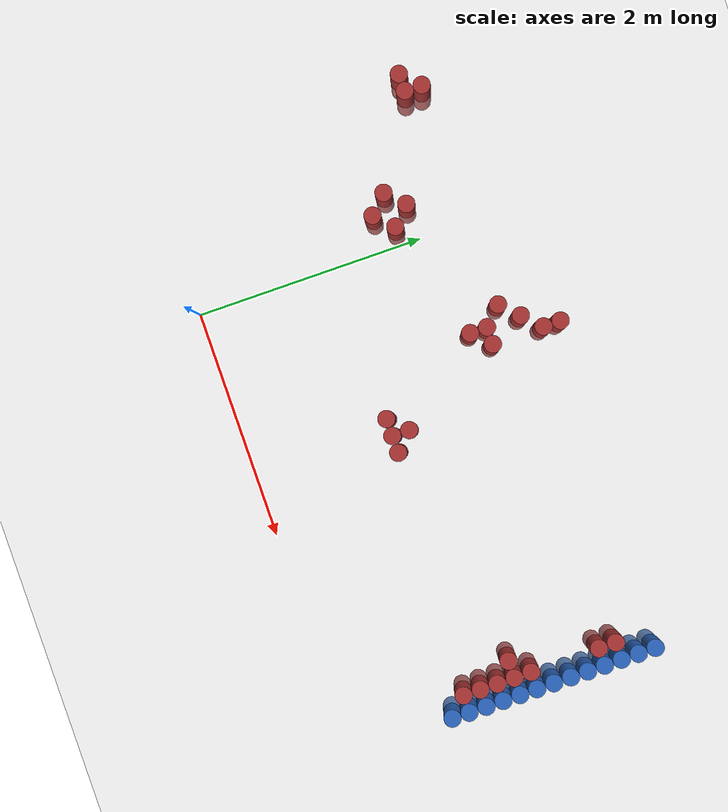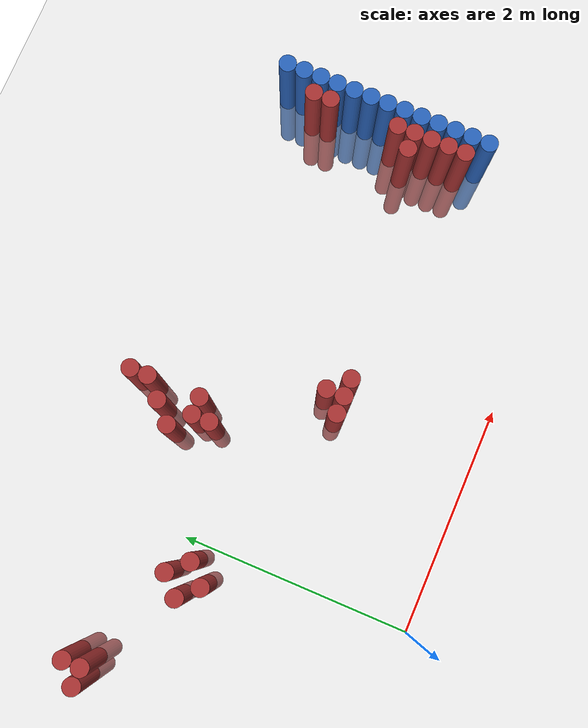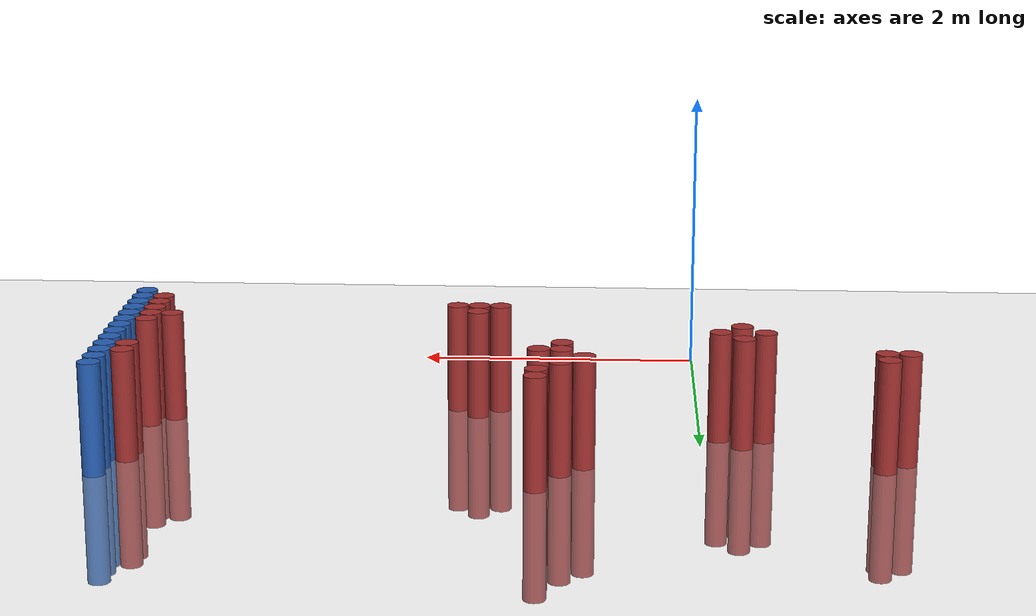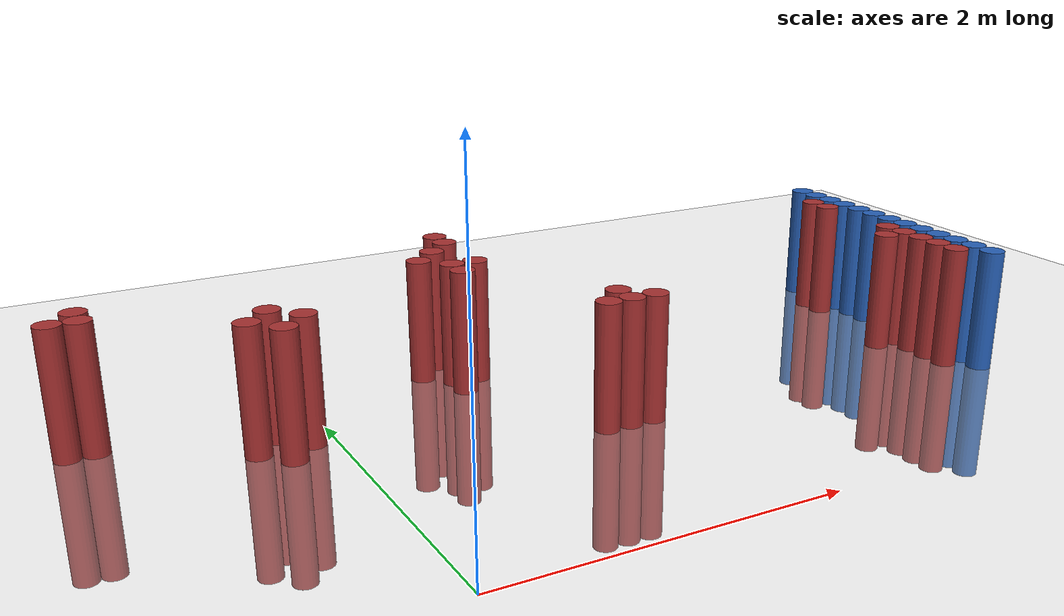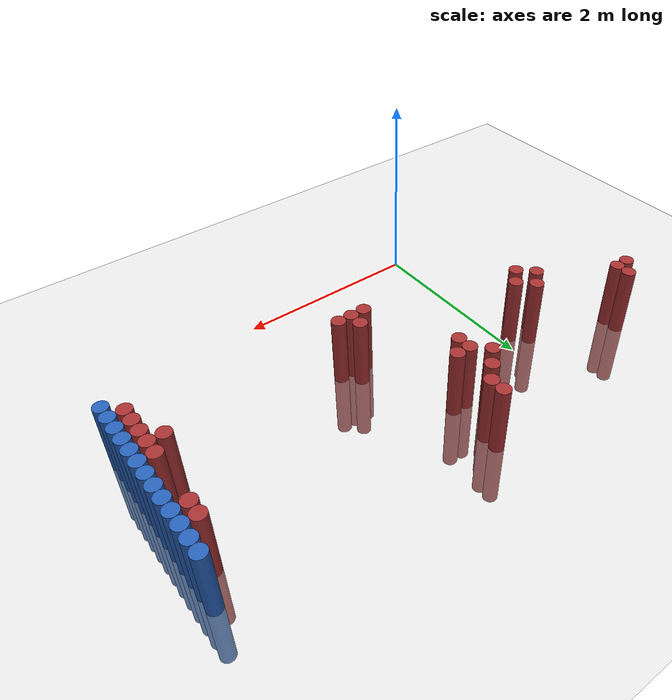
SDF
<sdf version="1.6">
 <world name="default">
  <model name="ground_plane">
   <static>1</static>
   <link name="link">
    <collision name="collision">
     <geometry><plane><normal>0 0 1</normal><size>100 100</size></plane></geometry>
     <surface><friction><ode><mu>100</mu><mu2>50</mu2></ode></friction></surface>
    </collision>
    <visual name="visual">
     <cast_shadows>0</cast_shadows>
     <geometry><plane><normal>0 0 1</normal><size>100 100</size></plane></geometry>
     <material>
      <script><uri>file://media/materials/scripts/gazebo.material</uri><name>Gazebo/Grey</name></script>
     </material>
    </visual>
   </link>
  </model>
  <model name="unit_cylinder_128">
   <static>1</static>
   <pose>3.925000 1.075000 0.000000 0.000000 0.000000 0.000000</pose>
   <link name="link">
    <inertial>
     <mass>1</mass>
     <inertia><ixx>0.145833</ixx><ixy>0</ixy><ixz>0</ixz><iyy>0.145833</iyy><iyz>0</iyz><izz>0.125</izz></inertia>
    </inertial>
    <collision name="collision">
     <geometry><cylinder><radius>0.075000</radius><length>1.5</length></cylinder></geometry>
    </collision>
    <visual name="visual">
     <geometry><cylinder><radius>0.075000</radius><length>1.5</length></cylinder></geometry>
     <material>
      <ambient>0.152000 0.379000 0.720000 1</ambient>
      <diffuse>0.152000 0.379000 0.720000 1</diffuse>
     </material>
     <material>
      <script><name>Gazebo/Grey</name><uri>file://media/materials/scripts/gazebo.material</uri></script>
     </material>
    </visual>
   </link>
  </model>
  <model name="unit_cylinder_130">
   <static>1</static>
   <pose>3.925000 1.225000 0.000000 0.000000 0.000000 0.000000</pose>
   <link name="link">
    <inertial>
     <mass>1</mass>
     <inertia><ixx>0.145833</ixx><ixy>0</ixy><ixz>0</ixz><iyy>0.145833</iyy><iyz>0</iyz><izz>0.125</izz></inertia>
    </inertial>
    <collision name="collision">
     <geometry><cylinder><radius>0.075000</radius><length>1.5</length></cylinder></geometry>
    </collision>
    <visual name="visual">
     <geometry><cylinder><radius>0.075000</radius><length>1.5</length></cylinder></geometry>
     <material>
      <ambient>0.152000 0.379000 0.720000 1</ambient>
      <diffuse>0.152000 0.379000 0.720000 1</diffuse>
     </material>
     <material>
      <script><name>Gazebo/Grey</name><uri>file://media/materials/scripts/gazebo.material</uri></script>
     </material>
    </visual>
   </link>
  </model>
  <model name="unit_cylinder_132">
   <static>1</static>
   <pose>3.925000 1.375000 0.000000 0.000000 0.000000 0.000000</pose>
   <link name="link">
    <inertial>
     <mass>1</mass>
     <inertia><ixx>0.145833</ixx><ixy>0</ixy><ixz>0</ixz><iyy>0.145833</iyy><iyz>0</iyz><izz>0.125</izz></inertia>
    </inertial>
    <collision name="collision">
     <geometry><cylinder><radius>0.075000</radius><length>1.5</length></cylinder></geometry>
    </collision>
    <visual name="visual">
     <geometry><cylinder><radius>0.075000</radius><length>1.5</length></cylinder></geometry>
     <material>
      <ambient>0.152000 0.379000 0.720000 1</ambient>
      <diffuse>0.152000 0.379000 0.720000 1</diffuse>
     </material>
     <material>
      <script><name>Gazebo/Grey</name><uri>file://media/materials/scripts/gazebo.material</uri></script>
     </material>
    </visual>
   </link>
  </model>
  <model name="unit_cylinder_134">
   <static>1</static>
   <pose>3.925000 1.525000 0.000000 0.000000 0.000000 0.000000</pose>
   <link name="link">
    <inertial>
     <mass>1</mass>
     <inertia><ixx>0.145833</ixx><ixy>0</ixy><ixz>0</ixz><iyy>0.145833</iyy><iyz>0</iyz><izz>0.125</izz></inertia>
    </inertial>
    <collision name="collision">
     <geometry><cylinder><radius>0.075000</radius><length>1.5</length></cylinder></geometry>
    </collision>
    <visual name="visual">
     <geometry><cylinder><radius>0.075000</radius><length>1.5</length></cylinder></geometry>
     <material>
      <ambient>0.152000 0.379000 0.720000 1</ambient>
      <diffuse>0.152000 0.379000 0.720000 1</diffuse>
     </material>
     <material>
      <script><name>Gazebo/Grey</name><uri>file://media/materials/scripts/gazebo.material</uri></script>
     </material>
    </visual>
   </link>
  </model>
  <model name="unit_cylinder_136">
   <static>1</static>
   <pose>3.925000 1.675000 0.000000 0.000000 0.000000 0.000000</pose>
   <link name="link">
    <inertial>
     <mass>1</mass>
     <inertia><ixx>0.145833</ixx><ixy>0</ixy><ixz>0</ixz><iyy>0.145833</iyy><iyz>0</iyz><izz>0.125</izz></inertia>
    </inertial>
    <collision name="collision">
     <geometry><cylinder><radius>0.075000</radius><length>1.5</length></cylinder></geometry>
    </collision>
    <visual name="visual">
     <geometry><cylinder><radius>0.075000</radius><length>1.5</length></cylinder></geometry>
     <material>
      <ambient>0.152000 0.379000 0.720000 1</ambient>
      <diffuse>0.152000 0.379000 0.720000 1</diffuse>
     </material>
     <material>
      <script><name>Gazebo/Grey</name><uri>file://media/materials/scripts/gazebo.material</uri></script>
     </material>
    </visual>
   </link>
  </model>
  <model name="unit_cylinder_138">
   <static>1</static>
   <pose>3.925000 1.825000 0.000000 0.000000 0.000000 0.000000</pose>
   <link name="link">
    <inertial>
     <mass>1</mass>
     <inertia><ixx>0.145833</ixx><ixy>0</ixy><ixz>0</ixz><iyy>0.145833</iyy><iyz>0</iyz><izz>0.125</izz></inertia>
    </inertial>
    <collision name="collision">
     <geometry><cylinder><radius>0.075000</radius><length>1.5</length></cylinder></geometry>
    </collision>
    <visual name="visual">
     <geometry><cylinder><radius>0.075000</radius><length>1.5</length></cylinder></geometry>
     <material>
      <ambient>0.152000 0.379000 0.720000 1</ambient>
      <diffuse>0.152000 0.379000 0.720000 1</diffuse>
     </material>
     <material>
      <script><name>Gazebo/Grey</name><uri>file://media/materials/scripts/gazebo.material</uri></script>
     </material>
    </visual>
   </link>
  </model>
  <model name="unit_cylinder_140">
   <static>1</static>
   <pose>3.925000 1.975000 0.000000 0.000000 0.000000 0.000000</pose>
   <link name="link">
    <inertial>
     <mass>1</mass>
     <inertia><ixx>0.145833</ixx><ixy>0</ixy><ixz>0</ixz><iyy>0.145833</iyy><iyz>0</iyz><izz>0.125</izz></inertia>
    </inertial>
    <collision name="collision">
     <geometry><cylinder><radius>0.075000</radius><length>1.5</length></cylinder></geometry>
    </collision>
    <visual name="visual">
     <geometry><cylinder><radius>0.075000</radius><length>1.5</length></cylinder></geometry>
     <material>
      <ambient>0.152000 0.379000 0.720000 1</ambient>
      <diffuse>0.152000 0.379000 0.720000 1</diffuse>
     </material>
     <material>
      <script><name>Gazebo/Grey</name><uri>file://media/materials/scripts/gazebo.material</uri></script>
     </material>
    </visual>
   </link>
  </model>
  <model name="unit_cylinder_142">
   <static>1</static>
   <pose>3.925000 2.125000 0.000000 0.000000 0.000000 0.000000</pose>
   <link name="link">
    <inertial>
     <mass>1</mass>
     <inertia><ixx>0.145833</ixx><ixy>0</ixy><ixz>0</ixz><iyy>0.145833</iyy><iyz>0</iyz><izz>0.125</izz></inertia>
    </inertial>
    <collision name="collision">
     <geometry><cylinder><radius>0.075000</radius><length>1.5</length></cylinder></geometry>
    </collision>
    <visual name="visual">
     <geometry><cylinder><radius>0.075000</radius><length>1.5</length></cylinder></geometry>
     <material>
      <ambient>0.152000 0.379000 0.720000 1</ambient>
      <diffuse>0.152000 0.379000 0.720000 1</diffuse>
     </material>
     <material>
      <script><name>Gazebo/Grey</name><uri>file://media/materials/scripts/gazebo.material</uri></script>
     </material>
    </visual>
   </link>
  </model>
  <model name="unit_cylinder_144">
   <static>1</static>
   <pose>3.925000 2.275000 0.000000 0.000000 0.000000 0.000000</pose>
   <link name="link">
    <inertial>
     <mass>1</mass>
     <inertia><ixx>0.145833</ixx><ixy>0</ixy><ixz>0</ixz><iyy>0.145833</iyy><iyz>0</iyz><izz>0.125</izz></inertia>
    </inertial>
    <collision name="collision">
     <geometry><cylinder><radius>0.075000</radius><length>1.5</length></cylinder></geometry>
    </collision>
    <visual name="visual">
     <geometry><cylinder><radius>0.075000</radius><length>1.5</length></cylinder></geometry>
     <material>
      <ambient>0.152000 0.379000 0.720000 1</ambient>
      <diffuse>0.152000 0.379000 0.720000 1</diffuse>
     </material>
     <material>
      <script><name>Gazebo/Grey</name><uri>file://media/materials/scripts/gazebo.material</uri></script>
     </material>
    </visual>
   </link>
  </model>
  <model name="unit_cylinder_146">
   <static>1</static>
   <pose>3.925000 2.425000 0.000000 0.000000 0.000000 0.000000</pose>
   <link name="link">
    <inertial>
     <mass>1</mass>
     <inertia><ixx>0.145833</ixx><ixy>0</ixy><ixz>0</ixz><iyy>0.145833</iyy><iyz>0</iyz><izz>0.125</izz></inertia>
    </inertial>
    <collision name="collision">
     <geometry><cylinder><radius>0.075000</radius><length>1.5</length></cylinder></geometry>
    </collision>
    <visual name="visual">
     <geometry><cylinder><radius>0.075000</radius><length>1.5</length></cylinder></geometry>
     <material>
      <ambient>0.152000 0.379000 0.720000 1</ambient>
      <diffuse>0.152000 0.379000 0.720000 1</diffuse>
     </material>
     <material>
      <script><name>Gazebo/Grey</name><uri>file://media/materials/scripts/gazebo.material</uri></script>
     </material>
    </visual>
   </link>
  </model>
  <model name="unit_cylinder_148">
   <static>1</static>
   <pose>3.925000 2.575000 0.000000 0.000000 0.000000 0.000000</pose>
   <link name="link">
    <inertial>
     <mass>1</mass>
     <inertia><ixx>0.145833</ixx><ixy>0</ixy><ixz>0</ixz><iyy>0.145833</iyy><iyz>0</iyz><izz>0.125</izz></inertia>
    </inertial>
    <collision name="collision">
     <geometry><cylinder><radius>0.075000</radius><length>1.5</length></cylinder></geometry>
    </collision>
    <visual name="visual">
     <geometry><cylinder><radius>0.075000</radius><length>1.5</length></cylinder></geometry>
     <material>
      <ambient>0.152000 0.379000 0.720000 1</ambient>
      <diffuse>0.152000 0.379000 0.720000 1</diffuse>
     </material>
     <material>
      <script><name>Gazebo/Grey</name><uri>file://media/materials/scripts/gazebo.material</uri></script>
     </material>
    </visual>
   </link>
  </model>
  <model name="unit_cylinder_150">
   <static>1</static>
   <pose>3.925000 2.725000 0.000000 0.000000 0.000000 0.000000</pose>
   <link name="link">
    <inertial>
     <mass>1</mass>
     <inertia><ixx>0.145833</ixx><ixy>0</ixy><ixz>0</ixz><iyy>0.145833</iyy><iyz>0</iyz><izz>0.125</izz></inertia>
    </inertial>
    <collision name="collision">
     <geometry><cylinder><radius>0.075000</radius><length>1.5</length></cylinder></geometry>
    </collision>
    <visual name="visual">
     <geometry><cylinder><radius>0.075000</radius><length>1.5</length></cylinder></geometry>
     <material>
      <ambient>0.152000 0.379000 0.720000 1</ambient>
      <diffuse>0.152000 0.379000 0.720000 1</diffuse>
     </material>
     <material>
      <script><name>Gazebo/Grey</name><uri>file://media/materials/scripts/gazebo.material</uri></script>
     </material>
    </visual>
   </link>
  </model>
  <model name="unit_cylinder_349">
   <static>1</static>
   <pose>-1.325000 2.275000 0.000000 0.000000 0.000000 0.000000</pose>
   <link name="link">
    <inertial>
     <mass>1</mass>
     <inertia><ixx>0.145833</ixx><ixy>0</ixy><ixz>0</ixz><iyy>0.145833</iyy><iyz>0</iyz><izz>0.125</izz></inertia>
    </inertial>
    <collision name="collision">
     <geometry><cylinder><radius>0.075000</radius><length>1.5</length></cylinder></geometry>
    </collision>
    <visual name="visual">
     <geometry><cylinder><radius>0.075000</radius><length>1.5</length></cylinder></geometry>
     <material>
      <ambient>0.648000 0.192000 0.192000 1</ambient>
      <diffuse>0.648000 0.192000 0.192000 1</diffuse>
     </material>
     <material>
      <script><name>Gazebo/Grey</name><uri>file://media/materials/scripts/gazebo.material</uri></script>
     </material>
    </visual>
   </link>
  </model>
  <model name="unit_cylinder_353">
   <static>1</static>
   <pose>-1.175000 2.275000 0.000000 0.000000 0.000000 0.000000</pose>
   <link name="link">
    <inertial>
     <mass>1</mass>
     <inertia><ixx>0.145833</ixx><ixy>0</ixy><ixz>0</ixz><iyy>0.145833</iyy><iyz>0</iyz><izz>0.125</izz></inertia>
    </inertial>
    <collision name="collision">
     <geometry><cylinder><radius>0.075000</radius><length>1.5</length></cylinder></geometry>
    </collision>
    <visual name="visual">
     <geometry><cylinder><radius>0.075000</radius><length>1.5</length></cylinder></geometry>
     <material>
      <ambient>0.648000 0.192000 0.192000 1</ambient>
      <diffuse>0.648000 0.192000 0.192000 1</diffuse>
     </material>
     <material>
      <script><name>Gazebo/Grey</name><uri>file://media/materials/scripts/gazebo.material</uri></script>
     </material>
    </visual>
   </link>
  </model>
  <model name="unit_cylinder_354">
   <static>1</static>
   <pose>-1.175000 2.425000 0.000000 0.000000 0.000000 0.000000</pose>
   <link name="link">
    <inertial>
     <mass>1</mass>
     <inertia><ixx>0.145833</ixx><ixy>0</ixy><ixz>0</ixz><iyy>0.145833</iyy><iyz>0</iyz><izz>0.125</izz></inertia>
    </inertial>
    <collision name="collision">
     <geometry><cylinder><radius>0.075000</radius><length>1.5</length></cylinder></geometry>
    </collision>
    <visual name="visual">
     <geometry><cylinder><radius>0.075000</radius><length>1.5</length></cylinder></geometry>
     <material>
      <ambient>0.648000 0.192000 0.192000 1</ambient>
      <diffuse>0.648000 0.192000 0.192000 1</diffuse>
     </material>
     <material>
      <script><name>Gazebo/Grey</name><uri>file://media/materials/scripts/gazebo.material</uri></script>
     </material>
    </visual>
   </link>
  </model>
  <model name="unit_cylinder_373">
   <static>1</static>
   <pose>-0.425000 1.825000 0.000000 0.000000 0.000000 0.000000</pose>
   <link name="link">
    <inertial>
     <mass>1</mass>
     <inertia><ixx>0.145833</ixx><ixy>0</ixy><ixz>0</ixz><iyy>0.145833</iyy><iyz>0</iyz><izz>0.125</izz></inertia>
    </inertial>
    <collision name="collision">
     <geometry><cylinder><radius>0.075000</radius><length>1.5</length></cylinder></geometry>
    </collision>
    <visual name="visual">
     <geometry><cylinder><radius>0.075000</radius><length>1.5</length></cylinder></geometry>
     <material>
      <ambient>0.648000 0.192000 0.192000 1</ambient>
      <diffuse>0.648000 0.192000 0.192000 1</diffuse>
     </material>
     <material>
      <script><name>Gazebo/Grey</name><uri>file://media/materials/scripts/gazebo.material</uri></script>
     </material>
    </visual>
   </link>
  </model>
  <model name="unit_cylinder_374">
   <static>1</static>
   <pose>-0.275000 1.675000 0.000000 0.000000 0.000000 0.000000</pose>
   <link name="link">
    <inertial>
     <mass>1</mass>
     <inertia><ixx>0.145833</ixx><ixy>0</ixy><ixz>0</ixz><iyy>0.145833</iyy><iyz>0</iyz><izz>0.125</izz></inertia>
    </inertial>
    <collision name="collision">
     <geometry><cylinder><radius>0.075000</radius><length>1.5</length></cylinder></geometry>
    </collision>
    <visual name="visual">
     <geometry><cylinder><radius>0.075000</radius><length>1.5</length></cylinder></geometry>
     <material>
      <ambient>0.648000 0.192000 0.192000 1</ambient>
      <diffuse>0.648000 0.192000 0.192000 1</diffuse>
     </material>
     <material>
      <script><name>Gazebo/Grey</name><uri>file://media/materials/scripts/gazebo.material</uri></script>
     </material>
    </visual>
   </link>
  </model>
  <model name="unit_cylinder_375">
   <static>1</static>
   <pose>-0.275000 1.975000 0.000000 0.000000 0.000000 0.000000</pose>
   <link name="link">
    <inertial>
     <mass>1</mass>
     <inertia><ixx>0.145833</ixx><ixy>0</ixy><ixz>0</ixz><iyy>0.145833</iyy><iyz>0</iyz><izz>0.125</izz></inertia>
    </inertial>
    <collision name="collision">
     <geometry><cylinder><radius>0.075000</radius><length>1.5</length></cylinder></geometry>
    </collision>
    <visual name="visual">
     <geometry><cylinder><radius>0.075000</radius><length>1.5</length></cylinder></geometry>
     <material>
      <ambient>0.648000 0.192000 0.192000 1</ambient>
      <diffuse>0.648000 0.192000 0.192000 1</diffuse>
     </material>
     <material>
      <script><name>Gazebo/Grey</name><uri>file://media/materials/scripts/gazebo.material</uri></script>
     </material>
    </visual>
   </link>
  </model>
  <model name="unit_cylinder_376">
   <static>1</static>
   <pose>-0.125000 1.825000 0.000000 0.000000 0.000000 0.000000</pose>
   <link name="link">
    <inertial>
     <mass>1</mass>
     <inertia><ixx>0.145833</ixx><ixy>0</ixy><ixz>0</ixz><iyy>0.145833</iyy><iyz>0</iyz><izz>0.125</izz></inertia>
    </inertial>
    <collision name="collision">
     <geometry><cylinder><radius>0.075000</radius><length>1.5</length></cylinder></geometry>
    </collision>
    <visual name="visual">
     <geometry><cylinder><radius>0.075000</radius><length>1.5</length></cylinder></geometry>
     <material>
      <ambient>0.648000 0.192000 0.192000 1</ambient>
      <diffuse>0.648000 0.192000 0.192000 1</diffuse>
     </material>
     <material>
      <script><name>Gazebo/Grey</name><uri>file://media/materials/scripts/gazebo.material</uri></script>
     </material>
    </visual>
   </link>
  </model>
  <model name="unit_cylinder_386">
   <static>1</static>
   <pose>0.775000 2.425000 0.000000 0.000000 0.000000 0.000000</pose>
   <link name="link">
    <inertial>
     <mass>1</mass>
     <inertia><ixx>0.145833</ixx><ixy>0</ixy><ixz>0</ixz><iyy>0.145833</iyy><iyz>0</iyz><izz>0.125</izz></inertia>
    </inertial>
    <collision name="collision">
     <geometry><cylinder><radius>0.075000</radius><length>1.5</length></cylinder></geometry>
    </collision>
    <visual name="visual">
     <geometry><cylinder><radius>0.075000</radius><length>1.5</length></cylinder></geometry>
     <material>
      <ambient>0.648000 0.192000 0.192000 1</ambient>
      <diffuse>0.648000 0.192000 0.192000 1</diffuse>
     </material>
     <material>
      <script><name>Gazebo/Grey</name><uri>file://media/materials/scripts/gazebo.material</uri></script>
     </material>
    </visual>
   </link>
  </model>
  <model name="unit_cylinder_388">
   <static>1</static>
   <pose>0.925000 2.125000 0.000000 0.000000 0.000000 0.000000</pose>
   <link name="link">
    <inertial>
     <mass>1</mass>
     <inertia><ixx>0.145833</ixx><ixy>0</ixy><ixz>0</ixz><iyy>0.145833</iyy><iyz>0</iyz><izz>0.125</izz></inertia>
    </inertial>
    <collision name="collision">
     <geometry><cylinder><radius>0.075000</radius><length>1.5</length></cylinder></geometry>
    </collision>
    <visual name="visual">
     <geometry><cylinder><radius>0.075000</radius><length>1.5</length></cylinder></geometry>
     <material>
      <ambient>0.648000 0.192000 0.192000 1</ambient>
      <diffuse>0.648000 0.192000 0.192000 1</diffuse>
     </material>
     <material>
      <script><name>Gazebo/Grey</name><uri>file://media/materials/scripts/gazebo.material</uri></script>
     </material>
    </visual>
   </link>
  </model>
  <model name="unit_cylinder_389">
   <static>1</static>
   <pose>0.925000 2.275000 0.000000 0.000000 0.000000 0.000000</pose>
   <link name="link">
    <inertial>
     <mass>1</mass>
     <inertia><ixx>0.145833</ixx><ixy>0</ixy><ixz>0</ixz><iyy>0.145833</iyy><iyz>0</iyz><izz>0.125</izz></inertia>
    </inertial>
    <collision name="collision">
     <geometry><cylinder><radius>0.075000</radius><length>1.5</length></cylinder></geometry>
    </collision>
    <visual name="visual">
     <geometry><cylinder><radius>0.075000</radius><length>1.5</length></cylinder></geometry>
     <material>
      <ambient>0.648000 0.192000 0.192000 1</ambient>
      <diffuse>0.648000 0.192000 0.192000 1</diffuse>
     </material>
     <material>
      <script><name>Gazebo/Grey</name><uri>file://media/materials/scripts/gazebo.material</uri></script>
     </material>
    </visual>
   </link>
  </model>
  <model name="unit_cylinder_390">
   <static>1</static>
   <pose>0.925000 2.575000 0.000000 0.000000 0.000000 0.000000</pose>
   <link name="link">
    <inertial>
     <mass>1</mass>
     <inertia><ixx>0.145833</ixx><ixy>0</ixy><ixz>0</ixz><iyy>0.145833</iyy><iyz>0</iyz><izz>0.125</izz></inertia>
    </inertial>
    <collision name="collision">
     <geometry><cylinder><radius>0.075000</radius><length>1.5</length></cylinder></geometry>
    </collision>
    <visual name="visual">
     <geometry><cylinder><radius>0.075000</radius><length>1.5</length></cylinder></geometry>
     <material>
      <ambient>0.648000 0.192000 0.192000 1</ambient>
      <diffuse>0.648000 0.192000 0.192000 1</diffuse>
     </material>
     <material>
      <script><name>Gazebo/Grey</name><uri>file://media/materials/scripts/gazebo.material</uri></script>
     </material>
    </visual>
   </link>
  </model>
  <model name="unit_cylinder_396">
   <static>1</static>
   <pose>1.075000 2.275000 0.000000 0.000000 0.000000 0.000000</pose>
   <link name="link">
    <inertial>
     <mass>1</mass>
     <inertia><ixx>0.145833</ixx><ixy>0</ixy><ixz>0</ixz><iyy>0.145833</iyy><iyz>0</iyz><izz>0.125</izz></inertia>
    </inertial>
    <collision name="collision">
     <geometry><cylinder><radius>0.075000</radius><length>1.5</length></cylinder></geometry>
    </collision>
    <visual name="visual">
     <geometry><cylinder><radius>0.075000</radius><length>1.5</length></cylinder></geometry>
     <material>
      <ambient>0.648000 0.192000 0.192000 1</ambient>
      <diffuse>0.648000 0.192000 0.192000 1</diffuse>
     </material>
     <material>
      <script><name>Gazebo/Grey</name><uri>file://media/materials/scripts/gazebo.material</uri></script>
     </material>
    </visual>
   </link>
  </model>
  <model name="unit_cylinder_397">
   <static>1</static>
   <pose>1.075000 2.725000 0.000000 0.000000 0.000000 0.000000</pose>
   <link name="link">
    <inertial>
     <mass>1</mass>
     <inertia><ixx>0.145833</ixx><ixy>0</ixy><ixz>0</ixz><iyy>0.145833</iyy><iyz>0</iyz><izz>0.125</izz></inertia>
    </inertial>
    <collision name="collision">
     <geometry><cylinder><radius>0.075000</radius><length>1.5</length></cylinder></geometry>
    </collision>
    <visual name="visual">
     <geometry><cylinder><radius>0.075000</radius><length>1.5</length></cylinder></geometry>
     <material>
      <ambient>0.648000 0.192000 0.192000 1</ambient>
      <diffuse>0.648000 0.192000 0.192000 1</diffuse>
     </material>
     <material>
      <script><name>Gazebo/Grey</name><uri>file://media/materials/scripts/gazebo.material</uri></script>
     </material>
    </visual>
   </link>
  </model>
  <model name="unit_cylinder_398">
   <static>1</static>
   <pose>1.075000 2.875000 0.000000 0.000000 0.000000 0.000000</pose>
   <link name="link">
    <inertial>
     <mass>1</mass>
     <inertia><ixx>0.145833</ixx><ixy>0</ixy><ixz>0</ixz><iyy>0.145833</iyy><iyz>0</iyz><izz>0.125</izz></inertia>
    </inertial>
    <collision name="collision">
     <geometry><cylinder><radius>0.075000</radius><length>1.5</length></cylinder></geometry>
    </collision>
    <visual name="visual">
     <geometry><cylinder><radius>0.075000</radius><length>1.5</length></cylinder></geometry>
     <material>
      <ambient>0.648000 0.192000 0.192000 1</ambient>
      <diffuse>0.648000 0.192000 0.192000 1</diffuse>
     </material>
     <material>
      <script><name>Gazebo/Grey</name><uri>file://media/materials/scripts/gazebo.material</uri></script>
     </material>
    </visual>
   </link>
  </model>
  <model name="unit_cylinder_407">
   <static>1</static>
   <pose>1.375000 1.225000 0.000000 0.000000 0.000000 0.000000</pose>
   <link name="link">
    <inertial>
     <mass>1</mass>
     <inertia><ixx>0.145833</ixx><ixy>0</ixy><ixz>0</ixz><iyy>0.145833</iyy><iyz>0</iyz><izz>0.125</izz></inertia>
    </inertial>
    <collision name="collision">
     <geometry><cylinder><radius>0.075000</radius><length>1.5</length></cylinder></geometry>
    </collision>
    <visual name="visual">
     <geometry><cylinder><radius>0.075000</radius><length>1.5</length></cylinder></geometry>
     <material>
      <ambient>0.648000 0.192000 0.192000 1</ambient>
      <diffuse>0.648000 0.192000 0.192000 1</diffuse>
     </material>
     <material>
      <script><name>Gazebo/Grey</name><uri>file://media/materials/scripts/gazebo.material</uri></script>
     </material>
    </visual>
   </link>
  </model>
  <model name="unit_cylinder_408">
   <static>1</static>
   <pose>1.525000 1.225000 0.000000 0.000000 0.000000 0.000000</pose>
   <link name="link">
    <inertial>
     <mass>1</mass>
     <inertia><ixx>0.145833</ixx><ixy>0</ixy><ixz>0</ixz><iyy>0.145833</iyy><iyz>0</iyz><izz>0.125</izz></inertia>
    </inertial>
    <collision name="collision">
     <geometry><cylinder><radius>0.075000</radius><length>1.5</length></cylinder></geometry>
    </collision>
    <visual name="visual">
     <geometry><cylinder><radius>0.075000</radius><length>1.5</length></cylinder></geometry>
     <material>
      <ambient>0.648000 0.192000 0.192000 1</ambient>
      <diffuse>0.648000 0.192000 0.192000 1</diffuse>
     </material>
     <material>
      <script><name>Gazebo/Grey</name><uri>file://media/materials/scripts/gazebo.material</uri></script>
     </material>
    </visual>
   </link>
  </model>
  <model name="unit_cylinder_409">
   <static>1</static>
   <pose>1.525000 1.375000 0.000000 0.000000 0.000000 0.000000</pose>
   <link name="link">
    <inertial>
     <mass>1</mass>
     <inertia><ixx>0.145833</ixx><ixy>0</ixy><ixz>0</ixz><iyy>0.145833</iyy><iyz>0</iyz><izz>0.125</izz></inertia>
    </inertial>
    <collision name="collision">
     <geometry><cylinder><radius>0.075000</radius><length>1.5</length></cylinder></geometry>
    </collision>
    <visual name="visual">
     <geometry><cylinder><radius>0.075000</radius><length>1.5</length></cylinder></geometry>
     <material>
      <ambient>0.648000 0.192000 0.192000 1</ambient>
      <diffuse>0.648000 0.192000 0.192000 1</diffuse>
     </material>
     <material>
      <script><name>Gazebo/Grey</name><uri>file://media/materials/scripts/gazebo.material</uri></script>
     </material>
    </visual>
   </link>
  </model>
  <model name="unit_cylinder_410">
   <static>1</static>
   <pose>1.675000 1.225000 0.000000 0.000000 0.000000 0.000000</pose>
   <link name="link">
    <inertial>
     <mass>1</mass>
     <inertia><ixx>0.145833</ixx><ixy>0</ixy><ixz>0</ixz><iyy>0.145833</iyy><iyz>0</iyz><izz>0.125</izz></inertia>
    </inertial>
    <collision name="collision">
     <geometry><cylinder><radius>0.075000</radius><length>1.5</length></cylinder></geometry>
    </collision>
    <visual name="visual">
     <geometry><cylinder><radius>0.075000</radius><length>1.5</length></cylinder></geometry>
     <material>
      <ambient>0.648000 0.192000 0.192000 1</ambient>
      <diffuse>0.648000 0.192000 0.192000 1</diffuse>
     </material>
     <material>
      <script><name>Gazebo/Grey</name><uri>file://media/materials/scripts/gazebo.material</uri></script>
     </material>
    </visual>
   </link>
  </model>
  <model name="unit_cylinder_437">
   <static>1</static>
   <pose>3.625000 1.525000 0.000000 0.000000 0.000000 0.000000</pose>
   <link name="link">
    <inertial>
     <mass>1</mass>
     <inertia><ixx>0.145833</ixx><ixy>0</ixy><ixz>0</ixz><iyy>0.145833</iyy><iyz>0</iyz><izz>0.125</izz></inertia>
    </inertial>
    <collision name="collision">
     <geometry><cylinder><radius>0.075000</radius><length>1.5</length></cylinder></geometry>
    </collision>
    <visual name="visual">
     <geometry><cylinder><radius>0.075000</radius><length>1.5</length></cylinder></geometry>
     <material>
      <ambient>0.648000 0.192000 0.192000 1</ambient>
      <diffuse>0.648000 0.192000 0.192000 1</diffuse>
     </material>
     <material>
      <script><name>Gazebo/Grey</name><uri>file://media/materials/scripts/gazebo.material</uri></script>
     </material>
    </visual>
   </link>
  </model>
  <model name="unit_cylinder_447">
   <static>1</static>
   <pose>3.775000 1.075000 0.000000 0.000000 0.000000 0.000000</pose>
   <link name="link">
    <inertial>
     <mass>1</mass>
     <inertia><ixx>0.145833</ixx><ixy>0</ixy><ixz>0</ixz><iyy>0.145833</iyy><iyz>0</iyz><izz>0.125</izz></inertia>
    </inertial>
    <collision name="collision">
     <geometry><cylinder><radius>0.075000</radius><length>1.5</length></cylinder></geometry>
    </collision>
    <visual name="visual">
     <geometry><cylinder><radius>0.075000</radius><length>1.5</length></cylinder></geometry>
     <material>
      <ambient>0.648000 0.192000 0.192000 1</ambient>
      <diffuse>0.648000 0.192000 0.192000 1</diffuse>
     </material>
     <material>
      <script><name>Gazebo/Grey</name><uri>file://media/materials/scripts/gazebo.material</uri></script>
     </material>
    </visual>
   </link>
  </model>
  <model name="unit_cylinder_448">
   <static>1</static>
   <pose>3.775000 1.225000 0.000000 0.000000 0.000000 0.000000</pose>
   <link name="link">
    <inertial>
     <mass>1</mass>
     <inertia><ixx>0.145833</ixx><ixy>0</ixy><ixz>0</ixz><iyy>0.145833</iyy><iyz>0</iyz><izz>0.125</izz></inertia>
    </inertial>
    <collision name="collision">
     <geometry><cylinder><radius>0.075000</radius><length>1.5</length></cylinder></geometry>
    </collision>
    <visual name="visual">
     <geometry><cylinder><radius>0.075000</radius><length>1.5</length></cylinder></geometry>
     <material>
      <ambient>0.648000 0.192000 0.192000 1</ambient>
      <diffuse>0.648000 0.192000 0.192000 1</diffuse>
     </material>
     <material>
      <script><name>Gazebo/Grey</name><uri>file://media/materials/scripts/gazebo.material</uri></script>
     </material>
    </visual>
   </link>
  </model>
  <model name="unit_cylinder_449">
   <static>1</static>
   <pose>3.775000 1.375000 0.000000 0.000000 0.000000 0.000000</pose>
   <link name="link">
    <inertial>
     <mass>1</mass>
     <inertia><ixx>0.145833</ixx><ixy>0</ixy><ixz>0</ixz><iyy>0.145833</iyy><iyz>0</iyz><izz>0.125</izz></inertia>
    </inertial>
    <collision name="collision">
     <geometry><cylinder><radius>0.075000</radius><length>1.5</length></cylinder></geometry>
    </collision>
    <visual name="visual">
     <geometry><cylinder><radius>0.075000</radius><length>1.5</length></cylinder></geometry>
     <material>
      <ambient>0.648000 0.192000 0.192000 1</ambient>
      <diffuse>0.648000 0.192000 0.192000 1</diffuse>
     </material>
     <material>
      <script><name>Gazebo/Grey</name><uri>file://media/materials/scripts/gazebo.material</uri></script>
     </material>
    </visual>
   </link>
  </model>
  <model name="unit_cylinder_450">
   <static>1</static>
   <pose>3.775000 1.525000 0.000000 0.000000 0.000000 0.000000</pose>
   <link name="link">
    <inertial>
     <mass>1</mass>
     <inertia><ixx>0.145833</ixx><ixy>0</ixy><ixz>0</ixz><iyy>0.145833</iyy><iyz>0</iyz><izz>0.125</izz></inertia>
    </inertial>
    <collision name="collision">
     <geometry><cylinder><radius>0.075000</radius><length>1.5</length></cylinder></geometry>
    </collision>
    <visual name="visual">
     <geometry><cylinder><radius>0.075000</radius><length>1.5</length></cylinder></geometry>
     <material>
      <ambient>0.648000 0.192000 0.192000 1</ambient>
      <diffuse>0.648000 0.192000 0.192000 1</diffuse>
     </material>
     <material>
      <script><name>Gazebo/Grey</name><uri>file://media/materials/scripts/gazebo.material</uri></script>
     </material>
    </visual>
   </link>
  </model>
  <model name="unit_cylinder_451">
   <static>1</static>
   <pose>3.775000 1.675000 0.000000 0.000000 0.000000 0.000000</pose>
   <link name="link">
    <inertial>
     <mass>1</mass>
     <inertia><ixx>0.145833</ixx><ixy>0</ixy><ixz>0</ixz><iyy>0.145833</iyy><iyz>0</iyz><izz>0.125</izz></inertia>
    </inertial>
    <collision name="collision">
     <geometry><cylinder><radius>0.075000</radius><length>1.5</length></cylinder></geometry>
    </collision>
    <visual name="visual">
     <geometry><cylinder><radius>0.075000</radius><length>1.5</length></cylinder></geometry>
     <material>
      <ambient>0.648000 0.192000 0.192000 1</ambient>
      <diffuse>0.648000 0.192000 0.192000 1</diffuse>
     </material>
     <material>
      <script><name>Gazebo/Grey</name><uri>file://media/materials/scripts/gazebo.material</uri></script>
     </material>
    </visual>
   </link>
  </model>
  <model name="unit_cylinder_452">
   <static>1</static>
   <pose>3.775000 2.275000 0.000000 0.000000 0.000000 0.000000</pose>
   <link name="link">
    <inertial>
     <mass>1</mass>
     <inertia><ixx>0.145833</ixx><ixy>0</ixy><ixz>0</ixz><iyy>0.145833</iyy><iyz>0</iyz><izz>0.125</izz></inertia>
    </inertial>
    <collision name="collision">
     <geometry><cylinder><radius>0.075000</radius><length>1.5</length></cylinder></geometry>
    </collision>
    <visual name="visual">
     <geometry><cylinder><radius>0.075000</radius><length>1.5</length></cylinder></geometry>
     <material>
      <ambient>0.648000 0.192000 0.192000 1</ambient>
      <diffuse>0.648000 0.192000 0.192000 1</diffuse>
     </material>
     <material>
      <script><name>Gazebo/Grey</name><uri>file://media/materials/scripts/gazebo.material</uri></script>
     </material>
    </visual>
   </link>
  </model>
  <model name="unit_cylinder_453">
   <static>1</static>
   <pose>3.775000 2.425000 0.000000 0.000000 0.000000 0.000000</pose>
   <link name="link">
    <inertial>
     <mass>1</mass>
     <inertia><ixx>0.145833</ixx><ixy>0</ixy><ixz>0</ixz><iyy>0.145833</iyy><iyz>0</iyz><izz>0.125</izz></inertia>
    </inertial>
    <collision name="collision">
     <geometry><cylinder><radius>0.075000</radius><length>1.5</length></cylinder></geometry>
    </collision>
    <visual name="visual">
     <geometry><cylinder><radius>0.075000</radius><length>1.5</length></cylinder></geometry>
     <material>
      <ambient>0.648000 0.192000 0.192000 1</ambient>
      <diffuse>0.648000 0.192000 0.192000 1</diffuse>
     </material>
     <material>
      <script><name>Gazebo/Grey</name><uri>file://media/materials/scripts/gazebo.material</uri></script>
     </material>
    </visual>
   </link>
  </model>
  <model name="unit_cylinder_476">
   <static>1</static>
   <pose>3.925000 0.925000 0.000000 0.000000 0.000000 0.000000</pose>
   <link name="link">
    <inertial>
     <mass>1</mass>
     <inertia><ixx>0.145833</ixx><ixy>0</ixy><ixz>0</ixz><iyy>0.145833</iyy><iyz>0</iyz><izz>0.125</izz></inertia>
    </inertial>
    <collision name="collision">
     <geometry><cylinder><radius>0.075000</radius><length>1.5</length></cylinder></geometry>
    </collision>
    <visual name="visual">
     <geometry><cylinder><radius>0.075000</radius><length>1.5</length></cylinder></geometry>
     <material>
      <ambient>0.152000 0.379000 0.720000 1</ambient>
      <diffuse>0.152000 0.379000 0.720000 1</diffuse>
     </material>
     <material>
      <script><name>Gazebo/Grey</name><uri>file://media/materials/scripts/gazebo.material</uri></script>
     </material>
    </visual>
   </link>
  </model>
  <model name="unit_cylinder_477">
   <static>1</static>
   <pose>3.925000 1.075000 0.000000 0.000000 0.000000 0.000000</pose>
   <link name="link">
    <inertial>
     <mass>1</mass>
     <inertia><ixx>0.145833</ixx><ixy>0</ixy><ixz>0</ixz><iyy>0.145833</iyy><iyz>0</iyz><izz>0.125</izz></inertia>
    </inertial>
    <collision name="collision">
     <geometry><cylinder><radius>0.075000</radius><length>1.5</length></cylinder></geometry>
    </collision>
    <visual name="visual">
     <geometry><cylinder><radius>0.075000</radius><length>1.5</length></cylinder></geometry>
     <material>
      <ambient>0.152000 0.379000 0.720000 1</ambient>
      <diffuse>0.152000 0.379000 0.720000 1</diffuse>
     </material>
     <material>
      <script><name>Gazebo/Grey</name><uri>file://media/materials/scripts/gazebo.material</uri></script>
     </material>
    </visual>
   </link>
  </model>
  <model name="unit_cylinder_478">
   <static>1</static>
   <pose>3.925000 1.225000 0.000000 0.000000 0.000000 0.000000</pose>
   <link name="link">
    <inertial>
     <mass>1</mass>
     <inertia><ixx>0.145833</ixx><ixy>0</ixy><ixz>0</ixz><iyy>0.145833</iyy><iyz>0</iyz><izz>0.125</izz></inertia>
    </inertial>
    <collision name="collision">
     <geometry><cylinder><radius>0.075000</radius><length>1.5</length></cylinder></geometry>
    </collision>
    <visual name="visual">
     <geometry><cylinder><radius>0.075000</radius><length>1.5</length></cylinder></geometry>
     <material>
      <ambient>0.152000 0.379000 0.720000 1</ambient>
      <diffuse>0.152000 0.379000 0.720000 1</diffuse>
     </material>
     <material>
      <script><name>Gazebo/Grey</name><uri>file://media/materials/scripts/gazebo.material</uri></script>
     </material>
    </visual>
   </link>
  </model>
  <model name="unit_cylinder_479">
   <static>1</static>
   <pose>3.925000 1.375000 0.000000 0.000000 0.000000 0.000000</pose>
   <link name="link">
    <inertial>
     <mass>1</mass>
     <inertia><ixx>0.145833</ixx><ixy>0</ixy><ixz>0</ixz><iyy>0.145833</iyy><iyz>0</iyz><izz>0.125</izz></inertia>
    </inertial>
    <collision name="collision">
     <geometry><cylinder><radius>0.075000</radius><length>1.5</length></cylinder></geometry>
    </collision>
    <visual name="visual">
     <geometry><cylinder><radius>0.075000</radius><length>1.5</length></cylinder></geometry>
     <material>
      <ambient>0.152000 0.379000 0.720000 1</ambient>
      <diffuse>0.152000 0.379000 0.720000 1</diffuse>
     </material>
     <material>
      <script><name>Gazebo/Grey</name><uri>file://media/materials/scripts/gazebo.material</uri></script>
     </material>
    </visual>
   </link>
  </model>
  <model name="unit_cylinder_480">
   <static>1</static>
   <pose>3.925000 1.525000 0.000000 0.000000 0.000000 0.000000</pose>
   <link name="link">
    <inertial>
     <mass>1</mass>
     <inertia><ixx>0.145833</ixx><ixy>0</ixy><ixz>0</ixz><iyy>0.145833</iyy><iyz>0</iyz><izz>0.125</izz></inertia>
    </inertial>
    <collision name="collision">
     <geometry><cylinder><radius>0.075000</radius><length>1.5</length></cylinder></geometry>
    </collision>
    <visual name="visual">
     <geometry><cylinder><radius>0.075000</radius><length>1.5</length></cylinder></geometry>
     <material>
      <ambient>0.152000 0.379000 0.720000 1</ambient>
      <diffuse>0.152000 0.379000 0.720000 1</diffuse>
     </material>
     <material>
      <script><name>Gazebo/Grey</name><uri>file://media/materials/scripts/gazebo.material</uri></script>
     </material>
    </visual>
   </link>
  </model>
  <model name="unit_cylinder_481">
   <static>1</static>
   <pose>3.925000 1.675000 0.000000 0.000000 0.000000 0.000000</pose>
   <link name="link">
    <inertial>
     <mass>1</mass>
     <inertia><ixx>0.145833</ixx><ixy>0</ixy><ixz>0</ixz><iyy>0.145833</iyy><iyz>0</iyz><izz>0.125</izz></inertia>
    </inertial>
    <collision name="collision">
     <geometry><cylinder><radius>0.075000</radius><length>1.5</length></cylinder></geometry>
    </collision>
    <visual name="visual">
     <geometry><cylinder><radius>0.075000</radius><length>1.5</length></cylinder></geometry>
     <material>
      <ambient>0.152000 0.379000 0.720000 1</ambient>
      <diffuse>0.152000 0.379000 0.720000 1</diffuse>
     </material>
     <material>
      <script><name>Gazebo/Grey</name><uri>file://media/materials/scripts/gazebo.material</uri></script>
     </material>
    </visual>
   </link>
  </model>
  <model name="unit_cylinder_482">
   <static>1</static>
   <pose>3.925000 1.825000 0.000000 0.000000 0.000000 0.000000</pose>
   <link name="link">
    <inertial>
     <mass>1</mass>
     <inertia><ixx>0.145833</ixx><ixy>0</ixy><ixz>0</ixz><iyy>0.145833</iyy><iyz>0</iyz><izz>0.125</izz></inertia>
    </inertial>
    <collision name="collision">
     <geometry><cylinder><radius>0.075000</radius><length>1.5</length></cylinder></geometry>
    </collision>
    <visual name="visual">
     <geometry><cylinder><radius>0.075000</radius><length>1.5</length></cylinder></geometry>
     <material>
      <ambient>0.152000 0.379000 0.720000 1</ambient>
      <diffuse>0.152000 0.379000 0.720000 1</diffuse>
     </material>
     <material>
      <script><name>Gazebo/Grey</name><uri>file://media/materials/scripts/gazebo.material</uri></script>
     </material>
    </visual>
   </link>
  </model>
  <model name="unit_cylinder_483">
   <static>1</static>
   <pose>3.925000 1.975000 0.000000 0.000000 0.000000 0.000000</pose>
   <link name="link">
    <inertial>
     <mass>1</mass>
     <inertia><ixx>0.145833</ixx><ixy>0</ixy><ixz>0</ixz><iyy>0.145833</iyy><iyz>0</iyz><izz>0.125</izz></inertia>
    </inertial>
    <collision name="collision">
     <geometry><cylinder><radius>0.075000</radius><length>1.5</length></cylinder></geometry>
    </collision>
    <visual name="visual">
     <geometry><cylinder><radius>0.075000</radius><length>1.5</length></cylinder></geometry>
     <material>
      <ambient>0.152000 0.379000 0.720000 1</ambient>
      <diffuse>0.152000 0.379000 0.720000 1</diffuse>
     </material>
     <material>
      <script><name>Gazebo/Grey</name><uri>file://media/materials/scripts/gazebo.material</uri></script>
     </material>
    </visual>
   </link>
  </model>
  <model name="unit_cylinder_484">
   <static>1</static>
   <pose>3.925000 2.125000 0.000000 0.000000 0.000000 0.000000</pose>
   <link name="link">
    <inertial>
     <mass>1</mass>
     <inertia><ixx>0.145833</ixx><ixy>0</ixy><ixz>0</ixz><iyy>0.145833</iyy><iyz>0</iyz><izz>0.125</izz></inertia>
    </inertial>
    <collision name="collision">
     <geometry><cylinder><radius>0.075000</radius><length>1.5</length></cylinder></geometry>
    </collision>
    <visual name="visual">
     <geometry><cylinder><radius>0.075000</radius><length>1.5</length></cylinder></geometry>
     <material>
      <ambient>0.152000 0.379000 0.720000 1</ambient>
      <diffuse>0.152000 0.379000 0.720000 1</diffuse>
     </material>
     <material>
      <script><name>Gazebo/Grey</name><uri>file://media/materials/scripts/gazebo.material</uri></script>
     </material>
    </visual>
   </link>
  </model>
  <model name="unit_cylinder_485">
   <static>1</static>
   <pose>3.925000 2.275000 0.000000 0.000000 0.000000 0.000000</pose>
   <link name="link">
    <inertial>
     <mass>1</mass>
     <inertia><ixx>0.145833</ixx><ixy>0</ixy><ixz>0</ixz><iyy>0.145833</iyy><iyz>0</iyz><izz>0.125</izz></inertia>
    </inertial>
    <collision name="collision">
     <geometry><cylinder><radius>0.075000</radius><length>1.5</length></cylinder></geometry>
    </collision>
    <visual name="visual">
     <geometry><cylinder><radius>0.075000</radius><length>1.5</length></cylinder></geometry>
     <material>
      <ambient>0.152000 0.379000 0.720000 1</ambient>
      <diffuse>0.152000 0.379000 0.720000 1</diffuse>
     </material>
     <material>
      <script><name>Gazebo/Grey</name><uri>file://media/materials/scripts/gazebo.material</uri></script>
     </material>
    </visual>
   </link>
  </model>
  <model name="unit_cylinder_486">
   <static>1</static>
   <pose>3.925000 2.425000 0.000000 0.000000 0.000000 0.000000</pose>
   <link name="link">
    <inertial>
     <mass>1</mass>
     <inertia><ixx>0.145833</ixx><ixy>0</ixy><ixz>0</ixz><iyy>0.145833</iyy><iyz>0</iyz><izz>0.125</izz></inertia>
    </inertial>
    <collision name="collision">
     <geometry><cylinder><radius>0.075000</radius><length>1.5</length></cylinder></geometry>
    </collision>
    <visual name="visual">
     <geometry><cylinder><radius>0.075000</radius><length>1.5</length></cylinder></geometry>
     <material>
      <ambient>0.152000 0.379000 0.720000 1</ambient>
      <diffuse>0.152000 0.379000 0.720000 1</diffuse>
     </material>
     <material>
      <script><name>Gazebo/Grey</name><uri>file://media/materials/scripts/gazebo.material</uri></script>
     </material>
    </visual>
   </link>
  </model>
  <model name="unit_cylinder_487">
   <static>1</static>
   <pose>3.925000 2.575000 0.000000 0.000000 0.000000 0.000000</pose>
   <link name="link">
    <inertial>
     <mass>1</mass>
     <inertia><ixx>0.145833</ixx><ixy>0</ixy><ixz>0</ixz><iyy>0.145833</iyy><iyz>0</iyz><izz>0.125</izz></inertia>
    </inertial>
    <collision name="collision">
     <geometry><cylinder><radius>0.075000</radius><length>1.5</length></cylinder></geometry>
    </collision>
    <visual name="visual">
     <geometry><cylinder><radius>0.075000</radius><length>1.5</length></cylinder></geometry>
     <material>
      <ambient>0.152000 0.379000 0.720000 1</ambient>
      <diffuse>0.152000 0.379000 0.720000 1</diffuse>
     </material>
     <material>
      <script><name>Gazebo/Grey</name><uri>file://media/materials/scripts/gazebo.material</uri></script>
     </material>
    </visual>
   </link>
  </model>
  <model name="unit_cylinder_488">
   <static>1</static>
   <pose>3.925000 2.725000 0.000000 0.000000 0.000000 0.000000</pose>
   <link name="link">
    <inertial>
     <mass>1</mass>
     <inertia><ixx>0.145833</ixx><ixy>0</ixy><ixz>0</ixz><iyy>0.145833</iyy><iyz>0</iyz><izz>0.125</izz></inertia>
    </inertial>
    <collision name="collision">
     <geometry><cylinder><radius>0.075000</radius><length>1.5</length></cylinder></geometry>
    </collision>
    <visual name="visual">
     <geometry><cylinder><radius>0.075000</radius><length>1.5</length></cylinder></geometry>
     <material>
      <ambient>0.152000 0.379000 0.720000 1</ambient>
      <diffuse>0.152000 0.379000 0.720000 1</diffuse>
     </material>
     <material>
      <script><name>Gazebo/Grey</name><uri>file://media/materials/scripts/gazebo.material</uri></script>
     </material>
    </visual>
   </link>
  </model>
 </world>
</sdf>
